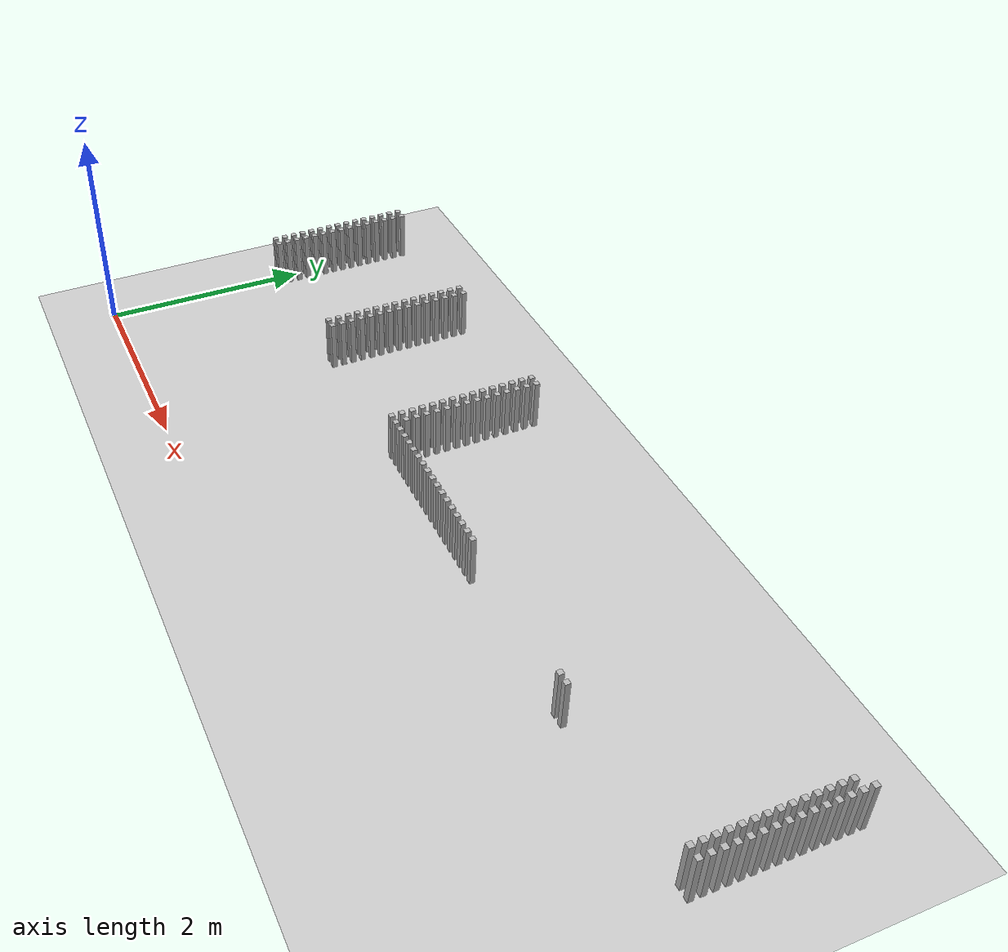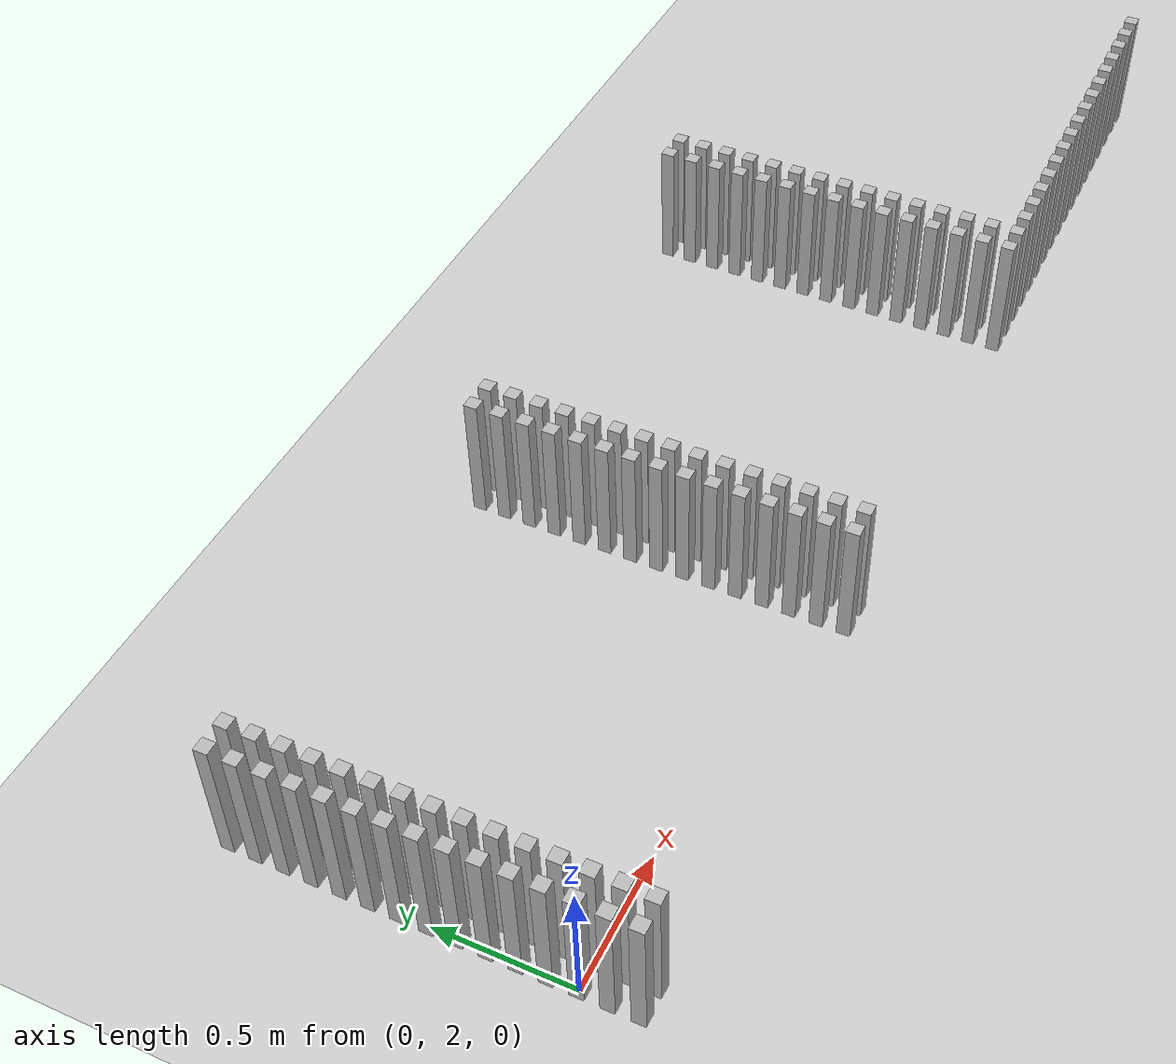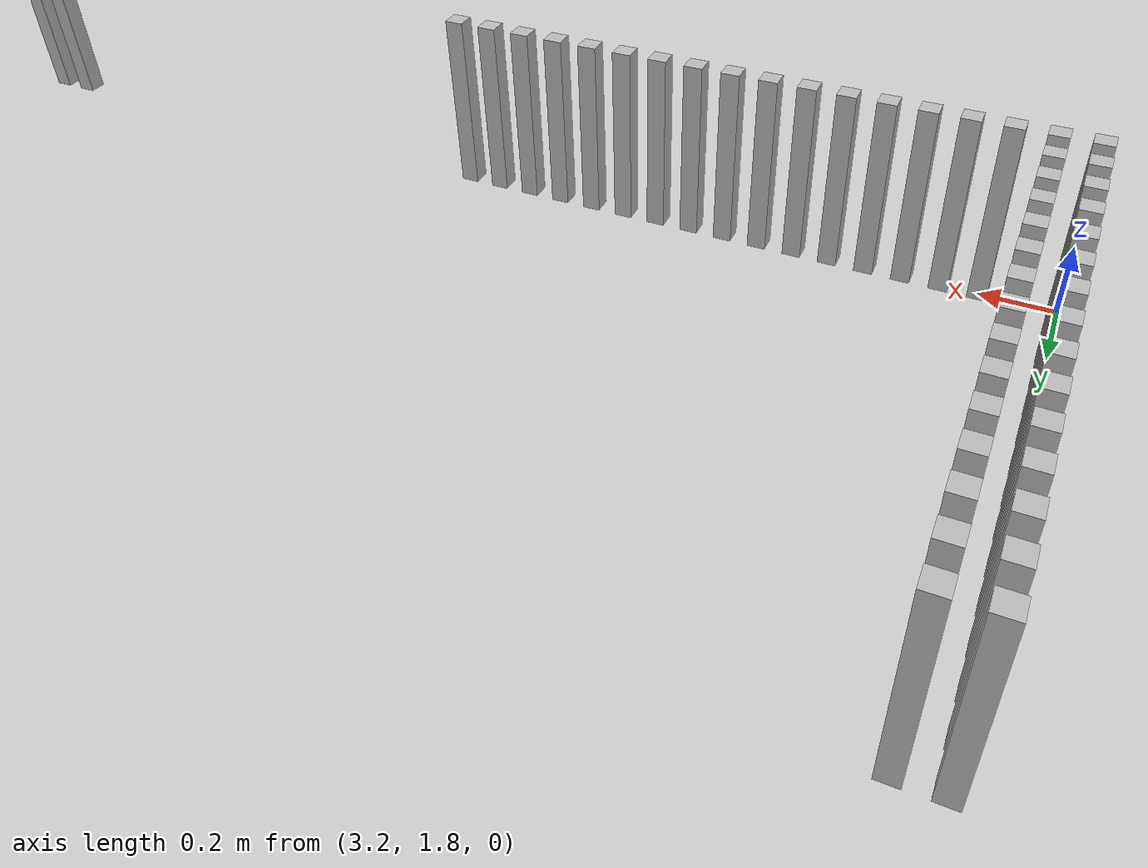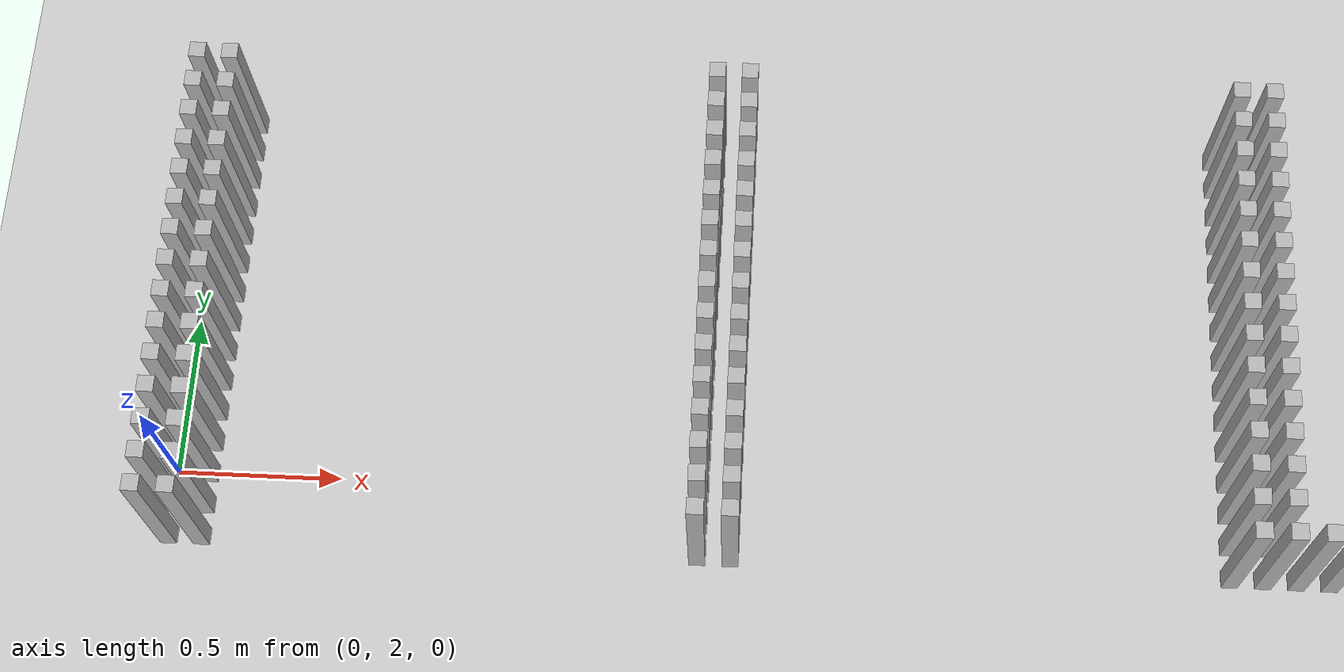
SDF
<sdf version="1.6">
 <world name="default_world">
  <include><uri>model://sun</uri></include>
  <include><uri>model://ground_plane</uri></include>
  <model name="wall_683">
   <static>true</static>
   <link name="link">
    <collision name="collision"><geometry><box><size>0.05 0.05 0.5</size></box></geometry></collision>
    <visual name="visual"><geometry><box><size>0.05 0.05 0.5</size></box></geometry></visual>
    <pose>8.1 3.3000000000000003 0.25 0 0 0</pose>
   </link>
  </model>
  <model name="wall_684">
   <static>true</static>
   <link name="link">
    <collision name="collision"><geometry><box><size>0.05 0.05 0.5</size></box></geometry></collision>
    <visual name="visual"><geometry><box><size>0.05 0.05 0.5</size></box></geometry></visual>
    <pose>0.0 3.2 0.25 0 0 0</pose>
   </link>
  </model>
  <model name="wall_685">
   <static>true</static>
   <link name="link">
    <collision name="collision"><geometry><box><size>0.05 0.05 0.5</size></box></geometry></collision>
    <visual name="visual"><geometry><box><size>0.05 0.05 0.5</size></box></geometry></visual>
    <pose>0.1 3.2 0.25 0 0 0</pose>
   </link>
  </model>
  <model name="wall_686">
   <static>true</static>
   <link name="link">
    <collision name="collision"><geometry><box><size>0.05 0.05 0.5</size></box></geometry></collision>
    <visual name="visual"><geometry><box><size>0.05 0.05 0.5</size></box></geometry></visual>
    <pose>1.6 3.2 0.25 0 0 0</pose>
   </link>
  </model>
  <model name="wall_687">
   <static>true</static>
   <link name="link">
    <collision name="collision"><geometry><box><size>0.05 0.05 0.5</size></box></geometry></collision>
    <visual name="visual"><geometry><box><size>0.05 0.05 0.5</size></box></geometry></visual>
    <pose>1.7000000000000002 3.2 0.25 0 0 0</pose>
   </link>
  </model>
  <model name="wall_688">
   <static>true</static>
   <link name="link">
    <collision name="collision"><geometry><box><size>0.05 0.05 0.5</size></box></geometry></collision>
    <visual name="visual"><geometry><box><size>0.05 0.05 0.5</size></box></geometry></visual>
    <pose>3.2 3.2 0.25 0 0 0</pose>
   </link>
  </model>
  <model name="wall_689">
   <static>true</static>
   <link name="link">
    <collision name="collision"><geometry><box><size>0.05 0.05 0.5</size></box></geometry></collision>
    <visual name="visual"><geometry><box><size>0.05 0.05 0.5</size></box></geometry></visual>
    <pose>3.3000000000000003 3.2 0.25 0 0 0</pose>
   </link>
  </model>
  <model name="wall_690">
   <static>true</static>
   <link name="link">
    <collision name="collision"><geometry><box><size>0.05 0.05 0.5</size></box></geometry></collision>
    <visual name="visual"><geometry><box><size>0.05 0.05 0.5</size></box></geometry></visual>
    <pose>8.0 3.2 0.25 0 0 0</pose>
   </link>
  </model>
  <model name="wall_691">
   <static>true</static>
   <link name="link">
    <collision name="collision"><geometry><box><size>0.05 0.05 0.5</size></box></geometry></collision>
    <visual name="visual"><geometry><box><size>0.05 0.05 0.5</size></box></geometry></visual>
    <pose>8.1 3.2 0.25 0 0 0</pose>
   </link>
  </model>
  <model name="wall_692">
   <static>true</static>
   <link name="link">
    <collision name="collision"><geometry><box><size>0.05 0.05 0.5</size></box></geometry></collision>
    <visual name="visual"><geometry><box><size>0.05 0.05 0.5</size></box></geometry></visual>
    <pose>0.0 3.1 0.25 0 0 0</pose>
   </link>
  </model>
  <model name="wall_693">
   <static>true</static>
   <link name="link">
    <collision name="collision"><geometry><box><size>0.05 0.05 0.5</size></box></geometry></collision>
    <visual name="visual"><geometry><box><size>0.05 0.05 0.5</size></box></geometry></visual>
    <pose>0.1 3.1 0.25 0 0 0</pose>
   </link>
  </model>
  <model name="wall_694">
   <static>true</static>
   <link name="link">
    <collision name="collision"><geometry><box><size>0.05 0.05 0.5</size></box></geometry></collision>
    <visual name="visual"><geometry><box><size>0.05 0.05 0.5</size></box></geometry></visual>
    <pose>1.6 3.1 0.25 0 0 0</pose>
   </link>
  </model>
  <model name="wall_695">
   <static>true</static>
   <link name="link">
    <collision name="collision"><geometry><box><size>0.05 0.05 0.5</size></box></geometry></collision>
    <visual name="visual"><geometry><box><size>0.05 0.05 0.5</size></box></geometry></visual>
    <pose>1.7000000000000002 3.1 0.25 0 0 0</pose>
   </link>
  </model>
  <model name="wall_696">
   <static>true</static>
   <link name="link">
    <collision name="collision"><geometry><box><size>0.05 0.05 0.5</size></box></geometry></collision>
    <visual name="visual"><geometry><box><size>0.05 0.05 0.5</size></box></geometry></visual>
    <pose>3.2 3.1 0.25 0 0 0</pose>
   </link>
  </model>
  <model name="wall_697">
   <static>true</static>
   <link name="link">
    <collision name="collision"><geometry><box><size>0.05 0.05 0.5</size></box></geometry></collision>
    <visual name="visual"><geometry><box><size>0.05 0.05 0.5</size></box></geometry></visual>
    <pose>3.3000000000000003 3.1 0.25 0 0 0</pose>
   </link>
  </model>
  <model name="wall_698">
   <static>true</static>
   <link name="link">
    <collision name="collision"><geometry><box><size>0.05 0.05 0.5</size></box></geometry></collision>
    <visual name="visual"><geometry><box><size>0.05 0.05 0.5</size></box></geometry></visual>
    <pose>8.0 3.1 0.25 0 0 0</pose>
   </link>
  </model>
  <model name="wall_699">
   <static>true</static>
   <link name="link">
    <collision name="collision"><geometry><box><size>0.05 0.05 0.5</size></box></geometry></collision>
    <visual name="visual"><geometry><box><size>0.05 0.05 0.5</size></box></geometry></visual>
    <pose>8.1 3.1 0.25 0 0 0</pose>
   </link>
  </model>
  <model name="wall_700">
   <static>true</static>
   <link name="link">
    <collision name="collision"><geometry><box><size>0.05 0.05 0.5</size></box></geometry></collision>
    <visual name="visual"><geometry><box><size>0.05 0.05 0.5</size></box></geometry></visual>
    <pose>0.0 3.0 0.25 0 0 0</pose>
   </link>
  </model>
  <model name="wall_701">
   <static>true</static>
   <link name="link">
    <collision name="collision"><geometry><box><size>0.05 0.05 0.5</size></box></geometry></collision>
    <visual name="visual"><geometry><box><size>0.05 0.05 0.5</size></box></geometry></visual>
    <pose>0.1 3.0 0.25 0 0 0</pose>
   </link>
  </model>
  <model name="wall_702">
   <static>true</static>
   <link name="link">
    <collision name="collision"><geometry><box><size>0.05 0.05 0.5</size></box></geometry></collision>
    <visual name="visual"><geometry><box><size>0.05 0.05 0.5</size></box></geometry></visual>
    <pose>1.6 3.0 0.25 0 0 0</pose>
   </link>
  </model>
  <model name="wall_703">
   <static>true</static>
   <link name="link">
    <collision name="collision"><geometry><box><size>0.05 0.05 0.5</size></box></geometry></collision>
    <visual name="visual"><geometry><box><size>0.05 0.05 0.5</size></box></geometry></visual>
    <pose>1.7000000000000002 3.0 0.25 0 0 0</pose>
   </link>
  </model>
  <model name="wall_704">
   <static>true</static>
   <link name="link">
    <collision name="collision"><geometry><box><size>0.05 0.05 0.5</size></box></geometry></collision>
    <visual name="visual"><geometry><box><size>0.05 0.05 0.5</size></box></geometry></visual>
    <pose>3.2 3.0 0.25 0 0 0</pose>
   </link>
  </model>
  <model name="wall_705">
   <static>true</static>
   <link name="link">
    <collision name="collision"><geometry><box><size>0.05 0.05 0.5</size></box></geometry></collision>
    <visual name="visual"><geometry><box><size>0.05 0.05 0.5</size></box></geometry></visual>
    <pose>3.3000000000000003 3.0 0.25 0 0 0</pose>
   </link>
  </model>
  <model name="wall_706">
   <static>true</static>
   <link name="link">
    <collision name="collision"><geometry><box><size>0.05 0.05 0.5</size></box></geometry></collision>
    <visual name="visual"><geometry><box><size>0.05 0.05 0.5</size></box></geometry></visual>
    <pose>8.0 3.0 0.25 0 0 0</pose>
   </link>
  </model>
  <model name="wall_707">
   <static>true</static>
   <link name="link">
    <collision name="collision"><geometry><box><size>0.05 0.05 0.5</size></box></geometry></collision>
    <visual name="visual"><geometry><box><size>0.05 0.05 0.5</size></box></geometry></visual>
    <pose>8.1 3.0 0.25 0 0 0</pose>
   </link>
  </model>
  <model name="wall_708">
   <static>true</static>
   <link name="link">
    <collision name="collision"><geometry><box><size>0.05 0.05 0.5</size></box></geometry></collision>
    <visual name="visual"><geometry><box><size>0.05 0.05 0.5</size></box></geometry></visual>
    <pose>0.0 2.9000000000000004 0.25 0 0 0</pose>
   </link>
  </model>
  <model name="wall_709">
   <static>true</static>
   <link name="link">
    <collision name="collision"><geometry><box><size>0.05 0.05 0.5</size></box></geometry></collision>
    <visual name="visual"><geometry><box><size>0.05 0.05 0.5</size></box></geometry></visual>
    <pose>0.1 2.9000000000000004 0.25 0 0 0</pose>
   </link>
  </model>
  <model name="wall_710">
   <static>true</static>
   <link name="link">
    <collision name="collision"><geometry><box><size>0.05 0.05 0.5</size></box></geometry></collision>
    <visual name="visual"><geometry><box><size>0.05 0.05 0.5</size></box></geometry></visual>
    <pose>1.6 2.9000000000000004 0.25 0 0 0</pose>
   </link>
  </model>
  <model name="wall_711">
   <static>true</static>
   <link name="link">
    <collision name="collision"><geometry><box><size>0.05 0.05 0.5</size></box></geometry></collision>
    <visual name="visual"><geometry><box><size>0.05 0.05 0.5</size></box></geometry></visual>
    <pose>1.7000000000000002 2.9000000000000004 0.25 0 0 0</pose>
   </link>
  </model>
  <model name="wall_712">
   <static>true</static>
   <link name="link">
    <collision name="collision"><geometry><box><size>0.05 0.05 0.5</size></box></geometry></collision>
    <visual name="visual"><geometry><box><size>0.05 0.05 0.5</size></box></geometry></visual>
    <pose>3.2 2.9000000000000004 0.25 0 0 0</pose>
   </link>
  </model>
  <model name="wall_713">
   <static>true</static>
   <link name="link">
    <collision name="collision"><geometry><box><size>0.05 0.05 0.5</size></box></geometry></collision>
    <visual name="visual"><geometry><box><size>0.05 0.05 0.5</size></box></geometry></visual>
    <pose>3.3000000000000003 2.9000000000000004 0.25 0 0 0</pose>
   </link>
  </model>
  <model name="wall_714">
   <static>true</static>
   <link name="link">
    <collision name="collision"><geometry><box><size>0.05 0.05 0.5</size></box></geometry></collision>
    <visual name="visual"><geometry><box><size>0.05 0.05 0.5</size></box></geometry></visual>
    <pose>8.0 2.9000000000000004 0.25 0 0 0</pose>
   </link>
  </model>
  <model name="wall_715">
   <static>true</static>
   <link name="link">
    <collision name="collision"><geometry><box><size>0.05 0.05 0.5</size></box></geometry></collision>
    <visual name="visual"><geometry><box><size>0.05 0.05 0.5</size></box></geometry></visual>
    <pose>8.1 2.9000000000000004 0.25 0 0 0</pose>
   </link>
  </model>
  <model name="wall_716">
   <static>true</static>
   <link name="link">
    <collision name="collision"><geometry><box><size>0.05 0.05 0.5</size></box></geometry></collision>
    <visual name="visual"><geometry><box><size>0.05 0.05 0.5</size></box></geometry></visual>
    <pose>0.0 2.8000000000000003 0.25 0 0 0</pose>
   </link>
  </model>
  <model name="wall_717">
   <static>true</static>
   <link name="link">
    <collision name="collision"><geometry><box><size>0.05 0.05 0.5</size></box></geometry></collision>
    <visual name="visual"><geometry><box><size>0.05 0.05 0.5</size></box></geometry></visual>
    <pose>0.1 2.8000000000000003 0.25 0 0 0</pose>
   </link>
  </model>
  <model name="wall_718">
   <static>true</static>
   <link name="link">
    <collision name="collision"><geometry><box><size>0.05 0.05 0.5</size></box></geometry></collision>
    <visual name="visual"><geometry><box><size>0.05 0.05 0.5</size></box></geometry></visual>
    <pose>1.6 2.8000000000000003 0.25 0 0 0</pose>
   </link>
  </model>
  <model name="wall_719">
   <static>true</static>
   <link name="link">
    <collision name="collision"><geometry><box><size>0.05 0.05 0.5</size></box></geometry></collision>
    <visual name="visual"><geometry><box><size>0.05 0.05 0.5</size></box></geometry></visual>
    <pose>1.7000000000000002 2.8000000000000003 0.25 0 0 0</pose>
   </link>
  </model>
  <model name="wall_720">
   <static>true</static>
   <link name="link">
    <collision name="collision"><geometry><box><size>0.05 0.05 0.5</size></box></geometry></collision>
    <visual name="visual"><geometry><box><size>0.05 0.05 0.5</size></box></geometry></visual>
    <pose>3.2 2.8000000000000003 0.25 0 0 0</pose>
   </link>
  </model>
  <model name="wall_721">
   <static>true</static>
   <link name="link">
    <collision name="collision"><geometry><box><size>0.05 0.05 0.5</size></box></geometry></collision>
    <visual name="visual"><geometry><box><size>0.05 0.05 0.5</size></box></geometry></visual>
    <pose>3.3000000000000003 2.8000000000000003 0.25 0 0 0</pose>
   </link>
  </model>
  <model name="wall_722">
   <static>true</static>
   <link name="link">
    <collision name="collision"><geometry><box><size>0.05 0.05 0.5</size></box></geometry></collision>
    <visual name="visual"><geometry><box><size>0.05 0.05 0.5</size></box></geometry></visual>
    <pose>8.0 2.8000000000000003 0.25 0 0 0</pose>
   </link>
  </model>
  <model name="wall_723">
   <static>true</static>
   <link name="link">
    <collision name="collision"><geometry><box><size>0.05 0.05 0.5</size></box></geometry></collision>
    <visual name="visual"><geometry><box><size>0.05 0.05 0.5</size></box></geometry></visual>
    <pose>8.1 2.8000000000000003 0.25 0 0 0</pose>
   </link>
  </model>
  <model name="wall_724">
   <static>true</static>
   <link name="link">
    <collision name="collision"><geometry><box><size>0.05 0.05 0.5</size></box></geometry></collision>
    <visual name="visual"><geometry><box><size>0.05 0.05 0.5</size></box></geometry></visual>
    <pose>0.0 2.7 0.25 0 0 0</pose>
   </link>
  </model>
  <model name="wall_725">
   <static>true</static>
   <link name="link">
    <collision name="collision"><geometry><box><size>0.05 0.05 0.5</size></box></geometry></collision>
    <visual name="visual"><geometry><box><size>0.05 0.05 0.5</size></box></geometry></visual>
    <pose>0.1 2.7 0.25 0 0 0</pose>
   </link>
  </model>
  <model name="wall_726">
   <static>true</static>
   <link name="link">
    <collision name="collision"><geometry><box><size>0.05 0.05 0.5</size></box></geometry></collision>
    <visual name="visual"><geometry><box><size>0.05 0.05 0.5</size></box></geometry></visual>
    <pose>1.6 2.7 0.25 0 0 0</pose>
   </link>
  </model>
  <model name="wall_727">
   <static>true</static>
   <link name="link">
    <collision name="collision"><geometry><box><size>0.05 0.05 0.5</size></box></geometry></collision>
    <visual name="visual"><geometry><box><size>0.05 0.05 0.5</size></box></geometry></visual>
    <pose>1.7000000000000002 2.7 0.25 0 0 0</pose>
   </link>
  </model>
  <model name="wall_728">
   <static>true</static>
   <link name="link">
    <collision name="collision"><geometry><box><size>0.05 0.05 0.5</size></box></geometry></collision>
    <visual name="visual"><geometry><box><size>0.05 0.05 0.5</size></box></geometry></visual>
    <pose>3.2 2.7 0.25 0 0 0</pose>
   </link>
  </model>
  <model name="wall_729">
   <static>true</static>
   <link name="link">
    <collision name="collision"><geometry><box><size>0.05 0.05 0.5</size></box></geometry></collision>
    <visual name="visual"><geometry><box><size>0.05 0.05 0.5</size></box></geometry></visual>
    <pose>3.3000000000000003 2.7 0.25 0 0 0</pose>
   </link>
  </model>
  <model name="wall_730">
   <static>true</static>
   <link name="link">
    <collision name="collision"><geometry><box><size>0.05 0.05 0.5</size></box></geometry></collision>
    <visual name="visual"><geometry><box><size>0.05 0.05 0.5</size></box></geometry></visual>
    <pose>8.0 2.7 0.25 0 0 0</pose>
   </link>
  </model>
  <model name="wall_731">
   <static>true</static>
   <link name="link">
    <collision name="collision"><geometry><box><size>0.05 0.05 0.5</size></box></geometry></collision>
    <visual name="visual"><geometry><box><size>0.05 0.05 0.5</size></box></geometry></visual>
    <pose>8.1 2.7 0.25 0 0 0</pose>
   </link>
  </model>
  <model name="wall_732">
   <static>true</static>
   <link name="link">
    <collision name="collision"><geometry><box><size>0.05 0.05 0.5</size></box></geometry></collision>
    <visual name="visual"><geometry><box><size>0.05 0.05 0.5</size></box></geometry></visual>
    <pose>0.0 2.6 0.25 0 0 0</pose>
   </link>
  </model>
  <model name="wall_733">
   <static>true</static>
   <link name="link">
    <collision name="collision"><geometry><box><size>0.05 0.05 0.5</size></box></geometry></collision>
    <visual name="visual"><geometry><box><size>0.05 0.05 0.5</size></box></geometry></visual>
    <pose>0.1 2.6 0.25 0 0 0</pose>
   </link>
  </model>
  <model name="wall_734">
   <static>true</static>
   <link name="link">
    <collision name="collision"><geometry><box><size>0.05 0.05 0.5</size></box></geometry></collision>
    <visual name="visual"><geometry><box><size>0.05 0.05 0.5</size></box></geometry></visual>
    <pose>1.6 2.6 0.25 0 0 0</pose>
   </link>
  </model>
  <model name="wall_735">
   <static>true</static>
   <link name="link">
    <collision name="collision"><geometry><box><size>0.05 0.05 0.5</size></box></geometry></collision>
    <visual name="visual"><geometry><box><size>0.05 0.05 0.5</size></box></geometry></visual>
    <pose>1.7000000000000002 2.6 0.25 0 0 0</pose>
   </link>
  </model>
  <model name="wall_736">
   <static>true</static>
   <link name="link">
    <collision name="collision"><geometry><box><size>0.05 0.05 0.5</size></box></geometry></collision>
    <visual name="visual"><geometry><box><size>0.05 0.05 0.5</size></box></geometry></visual>
    <pose>3.2 2.6 0.25 0 0 0</pose>
   </link>
  </model>
  <model name="wall_737">
   <static>true</static>
   <link name="link">
    <collision name="collision"><geometry><box><size>0.05 0.05 0.5</size></box></geometry></collision>
    <visual name="visual"><geometry><box><size>0.05 0.05 0.5</size></box></geometry></visual>
    <pose>3.3000000000000003 2.6 0.25 0 0 0</pose>
   </link>
  </model>
  <model name="wall_738">
   <static>true</static>
   <link name="link">
    <collision name="collision"><geometry><box><size>0.05 0.05 0.5</size></box></geometry></collision>
    <visual name="visual"><geometry><box><size>0.05 0.05 0.5</size></box></geometry></visual>
    <pose>8.0 2.6 0.25 0 0 0</pose>
   </link>
  </model>
  <model name="wall_739">
   <static>true</static>
   <link name="link">
    <collision name="collision"><geometry><box><size>0.05 0.05 0.5</size></box></geometry></collision>
    <visual name="visual"><geometry><box><size>0.05 0.05 0.5</size></box></geometry></visual>
    <pose>8.1 2.6 0.25 0 0 0</pose>
   </link>
  </model>
  <model name="wall_740">
   <static>true</static>
   <link name="link">
    <collision name="collision"><geometry><box><size>0.05 0.05 0.5</size></box></geometry></collision>
    <visual name="visual"><geometry><box><size>0.05 0.05 0.5</size></box></geometry></visual>
    <pose>0.0 2.5 0.25 0 0 0</pose>
   </link>
  </model>
  <model name="wall_741">
   <static>true</static>
   <link name="link">
    <collision name="collision"><geometry><box><size>0.05 0.05 0.5</size></box></geometry></collision>
    <visual name="visual"><geometry><box><size>0.05 0.05 0.5</size></box></geometry></visual>
    <pose>0.1 2.5 0.25 0 0 0</pose>
   </link>
  </model>
  <model name="wall_742">
   <static>true</static>
   <link name="link">
    <collision name="collision"><geometry><box><size>0.05 0.05 0.5</size></box></geometry></collision>
    <visual name="visual"><geometry><box><size>0.05 0.05 0.5</size></box></geometry></visual>
    <pose>1.6 2.5 0.25 0 0 0</pose>
   </link>
  </model>
  <model name="wall_743">
   <static>true</static>
   <link name="link">
    <collision name="collision"><geometry><box><size>0.05 0.05 0.5</size></box></geometry></collision>
    <visual name="visual"><geometry><box><size>0.05 0.05 0.5</size></box></geometry></visual>
    <pose>1.7000000000000002 2.5 0.25 0 0 0</pose>
   </link>
  </model>
  <model name="wall_744">
   <static>true</static>
   <link name="link">
    <collision name="collision"><geometry><box><size>0.05 0.05 0.5</size></box></geometry></collision>
    <visual name="visual"><geometry><box><size>0.05 0.05 0.5</size></box></geometry></visual>
    <pose>3.2 2.5 0.25 0 0 0</pose>
   </link>
  </model>
  <model name="wall_745">
   <static>true</static>
   <link name="link">
    <collision name="collision"><geometry><box><size>0.05 0.05 0.5</size></box></geometry></collision>
    <visual name="visual"><geometry><box><size>0.05 0.05 0.5</size></box></geometry></visual>
    <pose>3.3000000000000003 2.5 0.25 0 0 0</pose>
   </link>
  </model>
  <model name="wall_746">
   <static>true</static>
   <link name="link">
    <collision name="collision"><geometry><box><size>0.05 0.05 0.5</size></box></geometry></collision>
    <visual name="visual"><geometry><box><size>0.05 0.05 0.5</size></box></geometry></visual>
    <pose>8.0 2.5 0.25 0 0 0</pose>
   </link>
  </model>
  <model name="wall_747">
   <static>true</static>
   <link name="link">
    <collision name="collision"><geometry><box><size>0.05 0.05 0.5</size></box></geometry></collision>
    <visual name="visual"><geometry><box><size>0.05 0.05 0.5</size></box></geometry></visual>
    <pose>8.1 2.5 0.25 0 0 0</pose>
   </link>
  </model>
  <model name="wall_748">
   <static>true</static>
   <link name="link">
    <collision name="collision"><geometry><box><size>0.05 0.05 0.5</size></box></geometry></collision>
    <visual name="visual"><geometry><box><size>0.05 0.05 0.5</size></box></geometry></visual>
    <pose>0.0 2.4000000000000004 0.25 0 0 0</pose>
   </link>
  </model>
  <model name="wall_749">
   <static>true</static>
   <link name="link">
    <collision name="collision"><geometry><box><size>0.05 0.05 0.5</size></box></geometry></collision>
    <visual name="visual"><geometry><box><size>0.05 0.05 0.5</size></box></geometry></visual>
    <pose>0.1 2.4000000000000004 0.25 0 0 0</pose>
   </link>
  </model>
  <model name="wall_750">
   <static>true</static>
   <link name="link">
    <collision name="collision"><geometry><box><size>0.05 0.05 0.5</size></box></geometry></collision>
    <visual name="visual"><geometry><box><size>0.05 0.05 0.5</size></box></geometry></visual>
    <pose>1.6 2.4000000000000004 0.25 0 0 0</pose>
   </link>
  </model>
  <model name="wall_751">
   <static>true</static>
   <link name="link">
    <collision name="collision"><geometry><box><size>0.05 0.05 0.5</size></box></geometry></collision>
    <visual name="visual"><geometry><box><size>0.05 0.05 0.5</size></box></geometry></visual>
    <pose>1.7000000000000002 2.4000000000000004 0.25 0 0 0</pose>
   </link>
  </model>
  <model name="wall_752">
   <static>true</static>
   <link name="link">
    <collision name="collision"><geometry><box><size>0.05 0.05 0.5</size></box></geometry></collision>
    <visual name="visual"><geometry><box><size>0.05 0.05 0.5</size></box></geometry></visual>
    <pose>3.2 2.4000000000000004 0.25 0 0 0</pose>
   </link>
  </model>
  <model name="wall_753">
   <static>true</static>
   <link name="link">
    <collision name="collision"><geometry><box><size>0.05 0.05 0.5</size></box></geometry></collision>
    <visual name="visual"><geometry><box><size>0.05 0.05 0.5</size></box></geometry></visual>
    <pose>3.3000000000000003 2.4000000000000004 0.25 0 0 0</pose>
   </link>
  </model>
  <model name="wall_754">
   <static>true</static>
   <link name="link">
    <collision name="collision"><geometry><box><size>0.05 0.05 0.5</size></box></geometry></collision>
    <visual name="visual"><geometry><box><size>0.05 0.05 0.5</size></box></geometry></visual>
    <pose>8.0 2.4000000000000004 0.25 0 0 0</pose>
   </link>
  </model>
  <model name="wall_755">
   <static>true</static>
   <link name="link">
    <collision name="collision"><geometry><box><size>0.05 0.05 0.5</size></box></geometry></collision>
    <visual name="visual"><geometry><box><size>0.05 0.05 0.5</size></box></geometry></visual>
    <pose>8.1 2.4000000000000004 0.25 0 0 0</pose>
   </link>
  </model>
  <model name="wall_756">
   <static>true</static>
   <link name="link">
    <collision name="collision"><geometry><box><size>0.05 0.05 0.5</size></box></geometry></collision>
    <visual name="visual"><geometry><box><size>0.05 0.05 0.5</size></box></geometry></visual>
    <pose>0.0 2.3000000000000003 0.25 0 0 0</pose>
   </link>
  </model>
  <model name="wall_757">
   <static>true</static>
   <link name="link">
    <collision name="collision"><geometry><box><size>0.05 0.05 0.5</size></box></geometry></collision>
    <visual name="visual"><geometry><box><size>0.05 0.05 0.5</size></box></geometry></visual>
    <pose>0.1 2.3000000000000003 0.25 0 0 0</pose>
   </link>
  </model>
  <model name="wall_758">
   <static>true</static>
   <link name="link">
    <collision name="collision"><geometry><box><size>0.05 0.05 0.5</size></box></geometry></collision>
    <visual name="visual"><geometry><box><size>0.05 0.05 0.5</size></box></geometry></visual>
    <pose>1.6 2.3000000000000003 0.25 0 0 0</pose>
   </link>
  </model>
  <model name="wall_759">
   <static>true</static>
   <link name="link">
    <collision name="collision"><geometry><box><size>0.05 0.05 0.5</size></box></geometry></collision>
    <visual name="visual"><geometry><box><size>0.05 0.05 0.5</size></box></geometry></visual>
    <pose>1.7000000000000002 2.3000000000000003 0.25 0 0 0</pose>
   </link>
  </model>
  <model name="wall_760">
   <static>true</static>
   <link name="link">
    <collision name="collision"><geometry><box><size>0.05 0.05 0.5</size></box></geometry></collision>
    <visual name="visual"><geometry><box><size>0.05 0.05 0.5</size></box></geometry></visual>
    <pose>3.2 2.3000000000000003 0.25 0 0 0</pose>
   </link>
  </model>
  <model name="wall_761">
   <static>true</static>
   <link name="link">
    <collision name="collision"><geometry><box><size>0.05 0.05 0.5</size></box></geometry></collision>
    <visual name="visual"><geometry><box><size>0.05 0.05 0.5</size></box></geometry></visual>
    <pose>3.3000000000000003 2.3000000000000003 0.25 0 0 0</pose>
   </link>
  </model>
  <model name="wall_762">
   <static>true</static>
   <link name="link">
    <collision name="collision"><geometry><box><size>0.05 0.05 0.5</size></box></geometry></collision>
    <visual name="visual"><geometry><box><size>0.05 0.05 0.5</size></box></geometry></visual>
    <pose>8.0 2.3000000000000003 0.25 0 0 0</pose>
   </link>
  </model>
  <model name="wall_763">
   <static>true</static>
   <link name="link">
    <collision name="collision"><geometry><box><size>0.05 0.05 0.5</size></box></geometry></collision>
    <visual name="visual"><geometry><box><size>0.05 0.05 0.5</size></box></geometry></visual>
    <pose>8.1 2.3000000000000003 0.25 0 0 0</pose>
   </link>
  </model>
  <model name="wall_764">
   <static>true</static>
   <link name="link">
    <collision name="collision"><geometry><box><size>0.05 0.05 0.5</size></box></geometry></collision>
    <visual name="visual"><geometry><box><size>0.05 0.05 0.5</size></box></geometry></visual>
    <pose>0.0 2.2 0.25 0 0 0</pose>
   </link>
  </model>
  <model name="wall_765">
   <static>true</static>
   <link name="link">
    <collision name="collision"><geometry><box><size>0.05 0.05 0.5</size></box></geometry></collision>
    <visual name="visual"><geometry><box><size>0.05 0.05 0.5</size></box></geometry></visual>
    <pose>0.1 2.2 0.25 0 0 0</pose>
   </link>
  </model>
  <model name="wall_766">
   <static>true</static>
   <link name="link">
    <collision name="collision"><geometry><box><size>0.05 0.05 0.5</size></box></geometry></collision>
    <visual name="visual"><geometry><box><size>0.05 0.05 0.5</size></box></geometry></visual>
    <pose>1.6 2.2 0.25 0 0 0</pose>
   </link>
  </model>
  <model name="wall_767">
   <static>true</static>
   <link name="link">
    <collision name="collision"><geometry><box><size>0.05 0.05 0.5</size></box></geometry></collision>
    <visual name="visual"><geometry><box><size>0.05 0.05 0.5</size></box></geometry></visual>
    <pose>1.7000000000000002 2.2 0.25 0 0 0</pose>
   </link>
  </model>
  <model name="wall_768">
   <static>true</static>
   <link name="link">
    <collision name="collision"><geometry><box><size>0.05 0.05 0.5</size></box></geometry></collision>
    <visual name="visual"><geometry><box><size>0.05 0.05 0.5</size></box></geometry></visual>
    <pose>3.2 2.2 0.25 0 0 0</pose>
   </link>
  </model>
  <model name="wall_769">
   <static>true</static>
   <link name="link">
    <collision name="collision"><geometry><box><size>0.05 0.05 0.5</size></box></geometry></collision>
    <visual name="visual"><geometry><box><size>0.05 0.05 0.5</size></box></geometry></visual>
    <pose>3.3000000000000003 2.2 0.25 0 0 0</pose>
   </link>
  </model>
  <model name="wall_770">
   <static>true</static>
   <link name="link">
    <collision name="collision"><geometry><box><size>0.05 0.05 0.5</size></box></geometry></collision>
    <visual name="visual"><geometry><box><size>0.05 0.05 0.5</size></box></geometry></visual>
    <pose>8.0 2.2 0.25 0 0 0</pose>
   </link>
  </model>
  <model name="wall_771">
   <static>true</static>
   <link name="link">
    <collision name="collision"><geometry><box><size>0.05 0.05 0.5</size></box></geometry></collision>
    <visual name="visual"><geometry><box><size>0.05 0.05 0.5</size></box></geometry></visual>
    <pose>8.1 2.2 0.25 0 0 0</pose>
   </link>
  </model>
  <model name="wall_772">
   <static>true</static>
   <link name="link">
    <collision name="collision"><geometry><box><size>0.05 0.05 0.5</size></box></geometry></collision>
    <visual name="visual"><geometry><box><size>0.05 0.05 0.5</size></box></geometry></visual>
    <pose>0.0 2.1 0.25 0 0 0</pose>
   </link>
  </model>
  <model name="wall_773">
   <static>true</static>
   <link name="link">
    <collision name="collision"><geometry><box><size>0.05 0.05 0.5</size></box></geometry></collision>
    <visual name="visual"><geometry><box><size>0.05 0.05 0.5</size></box></geometry></visual>
    <pose>0.1 2.1 0.25 0 0 0</pose>
   </link>
  </model>
  <model name="wall_774">
   <static>true</static>
   <link name="link">
    <collision name="collision"><geometry><box><size>0.05 0.05 0.5</size></box></geometry></collision>
    <visual name="visual"><geometry><box><size>0.05 0.05 0.5</size></box></geometry></visual>
    <pose>1.6 2.1 0.25 0 0 0</pose>
   </link>
  </model>
  <model name="wall_775">
   <static>true</static>
   <link name="link">
    <collision name="collision"><geometry><box><size>0.05 0.05 0.5</size></box></geometry></collision>
    <visual name="visual"><geometry><box><size>0.05 0.05 0.5</size></box></geometry></visual>
    <pose>1.7000000000000002 2.1 0.25 0 0 0</pose>
   </link>
  </model>
  <model name="wall_776">
   <static>true</static>
   <link name="link">
    <collision name="collision"><geometry><box><size>0.05 0.05 0.5</size></box></geometry></collision>
    <visual name="visual"><geometry><box><size>0.05 0.05 0.5</size></box></geometry></visual>
    <pose>3.2 2.1 0.25 0 0 0</pose>
   </link>
  </model>
  <model name="wall_777">
   <static>true</static>
   <link name="link">
    <collision name="collision"><geometry><box><size>0.05 0.05 0.5</size></box></geometry></collision>
    <visual name="visual"><geometry><box><size>0.05 0.05 0.5</size></box></geometry></visual>
    <pose>3.3000000000000003 2.1 0.25 0 0 0</pose>
   </link>
  </model>
  <model name="wall_778">
   <static>true</static>
   <link name="link">
    <collision name="collision"><geometry><box><size>0.05 0.05 0.5</size></box></geometry></collision>
    <visual name="visual"><geometry><box><size>0.05 0.05 0.5</size></box></geometry></visual>
    <pose>8.0 2.1 0.25 0 0 0</pose>
   </link>
  </model>
  <model name="wall_779">
   <static>true</static>
   <link name="link">
    <collision name="collision"><geometry><box><size>0.05 0.05 0.5</size></box></geometry></collision>
    <visual name="visual"><geometry><box><size>0.05 0.05 0.5</size></box></geometry></visual>
    <pose>8.1 2.1 0.25 0 0 0</pose>
   </link>
  </model>
  <model name="wall_780">
   <static>true</static>
   <link name="link">
    <collision name="collision"><geometry><box><size>0.05 0.05 0.5</size></box></geometry></collision>
    <visual name="visual"><geometry><box><size>0.05 0.05 0.5</size></box></geometry></visual>
    <pose>0.0 2.0 0.25 0 0 0</pose>
   </link>
  </model>
  <model name="wall_781">
   <static>true</static>
   <link name="link">
    <collision name="collision"><geometry><box><size>0.05 0.05 0.5</size></box></geometry></collision>
    <visual name="visual"><geometry><box><size>0.05 0.05 0.5</size></box></geometry></visual>
    <pose>0.1 2.0 0.25 0 0 0</pose>
   </link>
  </model>
  <model name="wall_782">
   <static>true</static>
   <link name="link">
    <collision name="collision"><geometry><box><size>0.05 0.05 0.5</size></box></geometry></collision>
    <visual name="visual"><geometry><box><size>0.05 0.05 0.5</size></box></geometry></visual>
    <pose>1.6 2.0 0.25 0 0 0</pose>
   </link>
  </model>
  <model name="wall_783">
   <static>true</static>
   <link name="link">
    <collision name="collision"><geometry><box><size>0.05 0.05 0.5</size></box></geometry></collision>
    <visual name="visual"><geometry><box><size>0.05 0.05 0.5</size></box></geometry></visual>
    <pose>1.7000000000000002 2.0 0.25 0 0 0</pose>
   </link>
  </model>
  <model name="wall_784">
   <static>true</static>
   <link name="link">
    <collision name="collision"><geometry><box><size>0.05 0.05 0.5</size></box></geometry></collision>
    <visual name="visual"><geometry><box><size>0.05 0.05 0.5</size></box></geometry></visual>
    <pose>3.2 2.0 0.25 0 0 0</pose>
   </link>
  </model>
  <model name="wall_785">
   <static>true</static>
   <link name="link">
    <collision name="collision"><geometry><box><size>0.05 0.05 0.5</size></box></geometry></collision>
    <visual name="visual"><geometry><box><size>0.05 0.05 0.5</size></box></geometry></visual>
    <pose>3.3000000000000003 2.0 0.25 0 0 0</pose>
   </link>
  </model>
  <model name="wall_786">
   <static>true</static>
   <link name="link">
    <collision name="collision"><geometry><box><size>0.05 0.05 0.5</size></box></geometry></collision>
    <visual name="visual"><geometry><box><size>0.05 0.05 0.5</size></box></geometry></visual>
    <pose>8.0 2.0 0.25 0 0 0</pose>
   </link>
  </model>
  <model name="wall_787">
   <static>true</static>
   <link name="link">
    <collision name="collision"><geometry><box><size>0.05 0.05 0.5</size></box></geometry></collision>
    <visual name="visual"><geometry><box><size>0.05 0.05 0.5</size></box></geometry></visual>
    <pose>8.1 2.0 0.25 0 0 0</pose>
   </link>
  </model>
  <model name="wall_788">
   <static>true</static>
   <link name="link">
    <collision name="collision"><geometry><box><size>0.05 0.05 0.5</size></box></geometry></collision>
    <visual name="visual"><geometry><box><size>0.05 0.05 0.5</size></box></geometry></visual>
    <pose>0.0 1.9000000000000001 0.25 0 0 0</pose>
   </link>
  </model>
  <model name="wall_789">
   <static>true</static>
   <link name="link">
    <collision name="collision"><geometry><box><size>0.05 0.05 0.5</size></box></geometry></collision>
    <visual name="visual"><geometry><box><size>0.05 0.05 0.5</size></box></geometry></visual>
    <pose>0.1 1.9000000000000001 0.25 0 0 0</pose>
   </link>
  </model>
  <model name="wall_790">
   <static>true</static>
   <link name="link">
    <collision name="collision"><geometry><box><size>0.05 0.05 0.5</size></box></geometry></collision>
    <visual name="visual"><geometry><box><size>0.05 0.05 0.5</size></box></geometry></visual>
    <pose>1.6 1.9000000000000001 0.25 0 0 0</pose>
   </link>
  </model>
  <model name="wall_791">
   <static>true</static>
   <link name="link">
    <collision name="collision"><geometry><box><size>0.05 0.05 0.5</size></box></geometry></collision>
    <visual name="visual"><geometry><box><size>0.05 0.05 0.5</size></box></geometry></visual>
    <pose>1.7000000000000002 1.9000000000000001 0.25 0 0 0</pose>
   </link>
  </model>
  <model name="wall_792">
   <static>true</static>
   <link name="link">
    <collision name="collision"><geometry><box><size>0.05 0.05 0.5</size></box></geometry></collision>
    <visual name="visual"><geometry><box><size>0.05 0.05 0.5</size></box></geometry></visual>
    <pose>3.2 1.9000000000000001 0.25 0 0 0</pose>
   </link>
  </model>
  <model name="wall_793">
   <static>true</static>
   <link name="link">
    <collision name="collision"><geometry><box><size>0.05 0.05 0.5</size></box></geometry></collision>
    <visual name="visual"><geometry><box><size>0.05 0.05 0.5</size></box></geometry></visual>
    <pose>3.3000000000000003 1.9000000000000001 0.25 0 0 0</pose>
   </link>
  </model>
  <model name="wall_794">
   <static>true</static>
   <link name="link">
    <collision name="collision"><geometry><box><size>0.05 0.05 0.5</size></box></geometry></collision>
    <visual name="visual"><geometry><box><size>0.05 0.05 0.5</size></box></geometry></visual>
    <pose>8.0 1.9000000000000001 0.25 0 0 0</pose>
   </link>
  </model>
  <model name="wall_795">
   <static>true</static>
   <link name="link">
    <collision name="collision"><geometry><box><size>0.05 0.05 0.5</size></box></geometry></collision>
    <visual name="visual"><geometry><box><size>0.05 0.05 0.5</size></box></geometry></visual>
    <pose>8.1 1.9000000000000001 0.25 0 0 0</pose>
   </link>
  </model>
  <model name="wall_796">
   <static>true</static>
   <link name="link">
    <collision name="collision"><geometry><box><size>0.05 0.05 0.5</size></box></geometry></collision>
    <visual name="visual"><geometry><box><size>0.05 0.05 0.5</size></box></geometry></visual>
    <pose>0.0 1.8 0.25 0 0 0</pose>
   </link>
  </model>
  <model name="wall_797">
   <static>true</static>
   <link name="link">
    <collision name="collision"><geometry><box><size>0.05 0.05 0.5</size></box></geometry></collision>
    <visual name="visual"><geometry><box><size>0.05 0.05 0.5</size></box></geometry></visual>
    <pose>0.1 1.8 0.25 0 0 0</pose>
   </link>
  </model>
  <model name="wall_798">
   <static>true</static>
   <link name="link">
    <collision name="collision"><geometry><box><size>0.05 0.05 0.5</size></box></geometry></collision>
    <visual name="visual"><geometry><box><size>0.05 0.05 0.5</size></box></geometry></visual>
    <pose>1.6 1.8 0.25 0 0 0</pose>
   </link>
  </model>
  <model name="wall_799">
   <static>true</static>
   <link name="link">
    <collision name="collision"><geometry><box><size>0.05 0.05 0.5</size></box></geometry></collision>
    <visual name="visual"><geometry><box><size>0.05 0.05 0.5</size></box></geometry></visual>
    <pose>1.7000000000000002 1.8 0.25 0 0 0</pose>
   </link>
  </model>
  <model name="wall_800">
   <static>true</static>
   <link name="link">
    <collision name="collision"><geometry><box><size>0.05 0.05 0.5</size></box></geometry></collision>
    <visual name="visual"><geometry><box><size>0.05 0.05 0.5</size></box></geometry></visual>
    <pose>3.2 1.8 0.25 0 0 0</pose>
   </link>
  </model>
  <model name="wall_801">
   <static>true</static>
   <link name="link">
    <collision name="collision"><geometry><box><size>0.05 0.05 0.5</size></box></geometry></collision>
    <visual name="visual"><geometry><box><size>0.05 0.05 0.5</size></box></geometry></visual>
    <pose>3.3000000000000003 1.8 0.25 0 0 0</pose>
   </link>
  </model>
  <model name="wall_802">
   <static>true</static>
   <link name="link">
    <collision name="collision"><geometry><box><size>0.05 0.05 0.5</size></box></geometry></collision>
    <visual name="visual"><geometry><box><size>0.05 0.05 0.5</size></box></geometry></visual>
    <pose>3.4000000000000004 1.8 0.25 0 0 0</pose>
   </link>
  </model>
  <model name="wall_803">
   <static>true</static>
   <link name="link">
    <collision name="collision"><geometry><box><size>0.05 0.05 0.5</size></box></geometry></collision>
    <visual name="visual"><geometry><box><size>0.05 0.05 0.5</size></box></geometry></visual>
    <pose>3.5 1.8 0.25 0 0 0</pose>
   </link>
  </model>
  <model name="wall_804">
   <static>true</static>
   <link name="link">
    <collision name="collision"><geometry><box><size>0.05 0.05 0.5</size></box></geometry></collision>
    <visual name="visual"><geometry><box><size>0.05 0.05 0.5</size></box></geometry></visual>
    <pose>3.6 1.8 0.25 0 0 0</pose>
   </link>
  </model>
  <model name="wall_805">
   <static>true</static>
   <link name="link">
    <collision name="collision"><geometry><box><size>0.05 0.05 0.5</size></box></geometry></collision>
    <visual name="visual"><geometry><box><size>0.05 0.05 0.5</size></box></geometry></visual>
    <pose>3.7 1.8 0.25 0 0 0</pose>
   </link>
  </model>
  <model name="wall_806">
   <static>true</static>
   <link name="link">
    <collision name="collision"><geometry><box><size>0.05 0.05 0.5</size></box></geometry></collision>
    <visual name="visual"><geometry><box><size>0.05 0.05 0.5</size></box></geometry></visual>
    <pose>3.8000000000000003 1.8 0.25 0 0 0</pose>
   </link>
  </model>
  <model name="wall_807">
   <static>true</static>
   <link name="link">
    <collision name="collision"><geometry><box><size>0.05 0.05 0.5</size></box></geometry></collision>
    <visual name="visual"><geometry><box><size>0.05 0.05 0.5</size></box></geometry></visual>
    <pose>3.9000000000000004 1.8 0.25 0 0 0</pose>
   </link>
  </model>
  <model name="wall_808">
   <static>true</static>
   <link name="link">
    <collision name="collision"><geometry><box><size>0.05 0.05 0.5</size></box></geometry></collision>
    <visual name="visual"><geometry><box><size>0.05 0.05 0.5</size></box></geometry></visual>
    <pose>4.0 1.8 0.25 0 0 0</pose>
   </link>
  </model>
  <model name="wall_809">
   <static>true</static>
   <link name="link">
    <collision name="collision"><geometry><box><size>0.05 0.05 0.5</size></box></geometry></collision>
    <visual name="visual"><geometry><box><size>0.05 0.05 0.5</size></box></geometry></visual>
    <pose>4.1000000000000005 1.8 0.25 0 0 0</pose>
   </link>
  </model>
  <model name="wall_810">
   <static>true</static>
   <link name="link">
    <collision name="collision"><geometry><box><size>0.05 0.05 0.5</size></box></geometry></collision>
    <visual name="visual"><geometry><box><size>0.05 0.05 0.5</size></box></geometry></visual>
    <pose>4.2 1.8 0.25 0 0 0</pose>
   </link>
  </model>
  <model name="wall_811">
   <static>true</static>
   <link name="link">
    <collision name="collision"><geometry><box><size>0.05 0.05 0.5</size></box></geometry></collision>
    <visual name="visual"><geometry><box><size>0.05 0.05 0.5</size></box></geometry></visual>
    <pose>4.3 1.8 0.25 0 0 0</pose>
   </link>
  </model>
  <model name="wall_812">
   <static>true</static>
   <link name="link">
    <collision name="collision"><geometry><box><size>0.05 0.05 0.5</size></box></geometry></collision>
    <visual name="visual"><geometry><box><size>0.05 0.05 0.5</size></box></geometry></visual>
    <pose>4.4 1.8 0.25 0 0 0</pose>
   </link>
  </model>
  <model name="wall_813">
   <static>true</static>
   <link name="link">
    <collision name="collision"><geometry><box><size>0.05 0.05 0.5</size></box></geometry></collision>
    <visual name="visual"><geometry><box><size>0.05 0.05 0.5</size></box></geometry></visual>
    <pose>4.5 1.8 0.25 0 0 0</pose>
   </link>
  </model>
  <model name="wall_814">
   <static>true</static>
   <link name="link">
    <collision name="collision"><geometry><box><size>0.05 0.05 0.5</size></box></geometry></collision>
    <visual name="visual"><geometry><box><size>0.05 0.05 0.5</size></box></geometry></visual>
    <pose>4.6000000000000005 1.8 0.25 0 0 0</pose>
   </link>
  </model>
  <model name="wall_815">
   <static>true</static>
   <link name="link">
    <collision name="collision"><geometry><box><size>0.05 0.05 0.5</size></box></geometry></collision>
    <visual name="visual"><geometry><box><size>0.05 0.05 0.5</size></box></geometry></visual>
    <pose>4.7 1.8 0.25 0 0 0</pose>
   </link>
  </model>
  <model name="wall_816">
   <static>true</static>
   <link name="link">
    <collision name="collision"><geometry><box><size>0.05 0.05 0.5</size></box></geometry></collision>
    <visual name="visual"><geometry><box><size>0.05 0.05 0.5</size></box></geometry></visual>
    <pose>4.800000000000001 1.8 0.25 0 0 0</pose>
   </link>
  </model>
  <model name="wall_817">
   <static>true</static>
   <link name="link">
    <collision name="collision"><geometry><box><size>0.05 0.05 0.5</size></box></geometry></collision>
    <visual name="visual"><geometry><box><size>0.05 0.05 0.5</size></box></geometry></visual>
    <pose>4.9 1.8 0.25 0 0 0</pose>
   </link>
  </model>
  <model name="wall_818">
   <static>true</static>
   <link name="link">
    <collision name="collision"><geometry><box><size>0.05 0.05 0.5</size></box></geometry></collision>
    <visual name="visual"><geometry><box><size>0.05 0.05 0.5</size></box></geometry></visual>
    <pose>6.4 1.8 0.25 0 0 0</pose>
   </link>
  </model>
  <model name="wall_819">
   <static>true</static>
   <link name="link">
    <collision name="collision"><geometry><box><size>0.05 0.05 0.5</size></box></geometry></collision>
    <visual name="visual"><geometry><box><size>0.05 0.05 0.5</size></box></geometry></visual>
    <pose>6.5 1.8 0.25 0 0 0</pose>
   </link>
  </model>
 </world>
</sdf>
